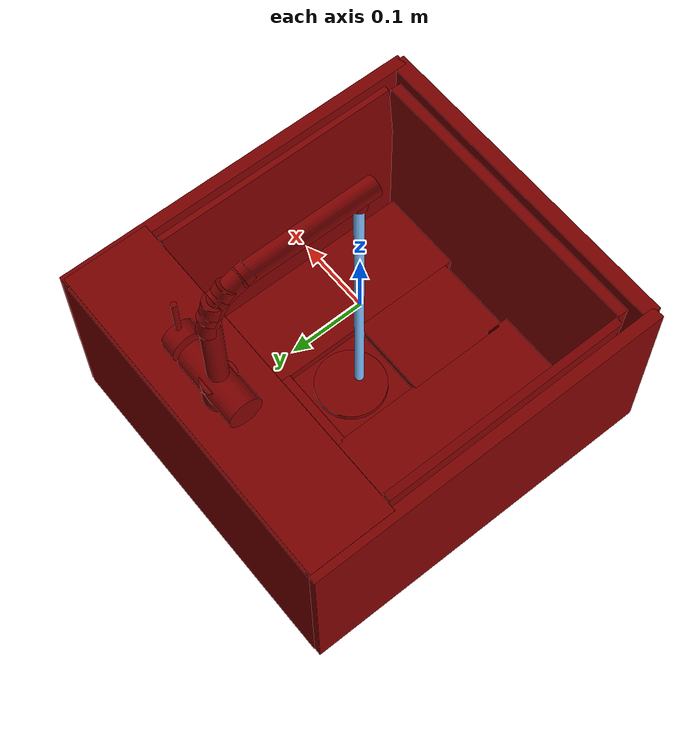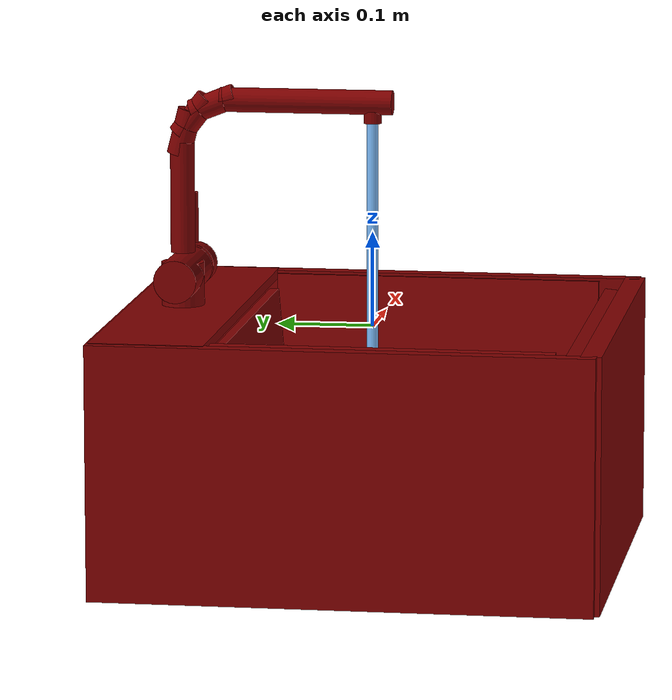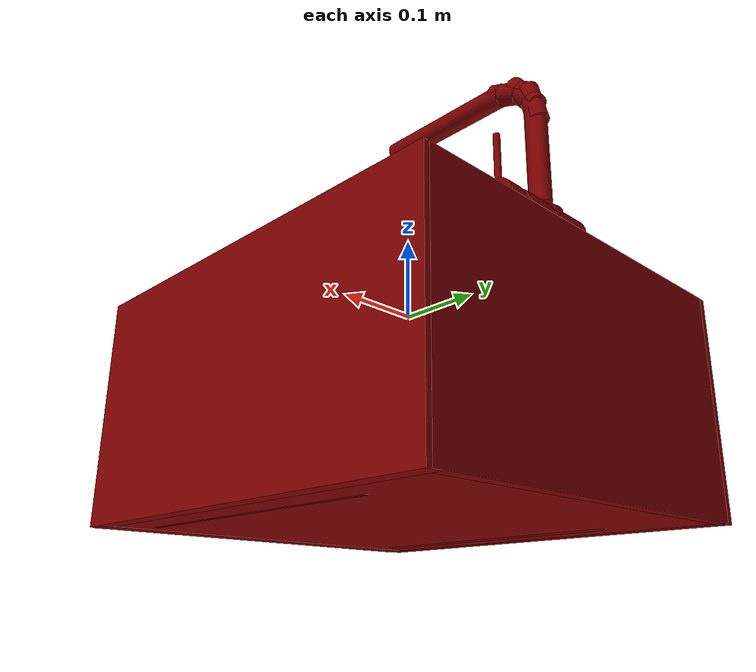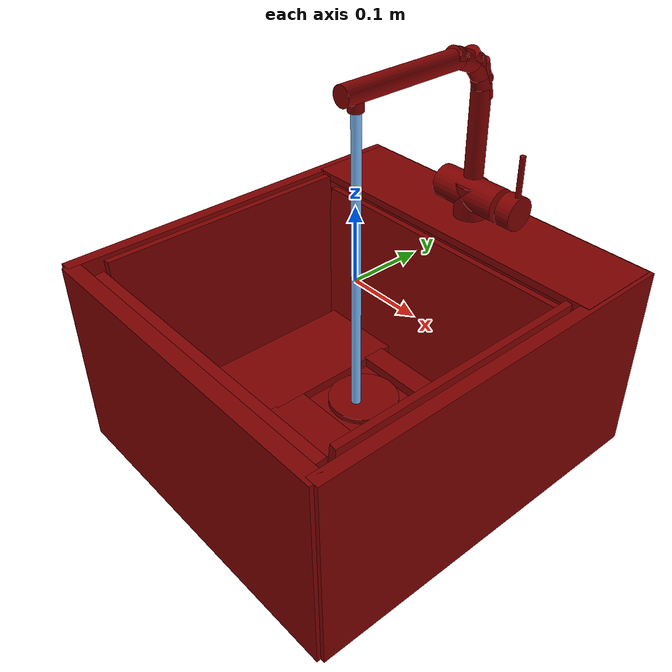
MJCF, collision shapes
<mujoco model="model">
  <compiler angle="radian"/>
  <asset>
    <mesh file="visuals/handle.obj" name="handle_vis"/>
    <mesh file="visuals/Body001.obj" name="Body001_vis"/>
    <mesh file="visuals/Funnel001.obj" name="Funnel001_vis"/>
    <mesh file="visuals/spout.obj" name="spout_vis"/>
    <texture file="visuals/T_BC001.png" name="Body001_material" type="2d"/>
    <material name="Body001_material" rgba="1 1 1 1.0" texture="Body001_material" shininess="0.5" specular="1"/>
    <texture file="visuals/T_BC001.png" name="handle_material" type="2d"/>
    <material name="handle_material" rgba="1 1 1 1.0" texture="handle_material" shininess="0.5" specular="1"/>
    <texture file="visuals/T_BC001.png" name="Funnel001_material" type="2d"/>
    <material name="Funnel001_material" rgba="1 1 1 1.0" texture="Funnel001_material" shininess="0.5" specular="1"/>
    <texture file="visuals/T_BC001.png" name="spout_material" type="2d"/>
    <material name="spout_material" rgba="1 1 1 1.0" texture="spout_material" shininess="0.5" specular="1"/>
  </asset>
  <default>
    <default class="visual">
      <geom conaffinity="0" contype="0" group="1" type="mesh"/>
    </default>
    <default class="collision">
      <geom group="0" rgba="0.5 0 0 0.5"/>
    </default>
    <default class="spawn">
      <geom group="0" rgba="1 1 1 0.5" contype="0" conaffinity="0"/>
      <site group="0" rgba="1 1 1 0.5"/>
    </default>
    <default class="region">
      <geom group="1" conaffinity="0" contype="0" rgba="0 1 0 0"/>
    </default>
  </default>
  <worldbody>
    <body>
      <body name="object">
        <geom mesh="Body001_vis" type="mesh" solimp="0.998 0.998 0.001" solref="0.001 1" density="100" friction="0.95 0.3 0.1" class="visual" material="Body001_material"/>
        <geom class="collision" type="box" pos="-0.23506054282188416 -2.682209014892578e-07 -0.11578034609556198" size="0.008296264335513115 0.25962021946907043 0.1329718977212906" quat="1.0 0.0 0.0 0.0"/>
        <geom class="collision" type="box" pos="0.23565641045570374 -2.682209014892578e-07 -0.11578034609556198" size="0.008736610412597656 0.25962021946907043 0.1329718977212906" quat="1.0 0.0 0.0 0.0"/>
        <geom class="collision" type="box" pos="0.0030584409832954407 -0.2540026605129242 -0.11578034609556198" size="0.23583553731441498 0.010839495807886124 0.1329718828201294" quat="1.0 0.0 0.0 0.0"/>
        <geom class="collision" type="box" pos="0.0030584409832954407 0.2537139356136322 -0.11578034609556198" size="0.23583604395389557 0.006797622423619032 0.1324511170387268" quat="1.0 0.0 0.0 0.0"/>
        <geom class="collision" type="box" pos="0.0030584409832954407 0.1276591718196869 -0.11224254220724106" size="0.005302014295011759 0.20624402165412903 0.11287185549736023" quat="-0.036606933921575546 -0.7061585783958435 -0.7061585783958435 0.03660687059164047"/>
        <geom class="collision" type="box" pos="0.0030584412161260843 -0.21895095705986023 -0.11246468871831894" size="0.0073319533839821815 0.21064023673534393 0.12072356045246124" quat="0.0349348820745945 -0.7062432765960693 -0.7062432765960693 -0.03493494167923927"/>
        <geom class="collision" type="box" pos="-0.19945518672466278 -0.040441274642944336 -0.11609373986721039" size="0.005518236663192511 0.1761256605386734 0.13290388882160187" quat="-4.3643286318229e-08 -0.9984419941902161 2.439091373318547e-09 -0.055799901485443115"/>
        <geom class="collision" type="box" pos="0.19890040159225464 -0.040441274642944336 -0.11591848731040955" size="0.004599577747285366 0.1761256605386734 0.13290388882160187" quat="0.9984419941902161 0.0 0.05579989776015282 0.0"/>
        <geom class="collision" type="box" pos="0.0030584409832954407 -0.000232011079788208 -0.2409551739692688" size="0.23583975434303284 0.2589705288410187 0.006797613110393286" quat="1.0 0.0 0.0 0.0"/>
        <geom class="collision" type="box" pos="-0.11705823242664337 -0.04320057854056358 -0.1983031928539276" size="0.06129753217101097 0.1586364209651947 0.006797529757022858" quat="1.0 0.0 0.0 0.0"/>
        <geom class="collision" type="box" pos="0.11731576919555664 -0.04320057854056358 -0.1983031928539276" size="0.06129753217101097 0.15863670408725739 0.00679754139855504" quat="1.0 0.0 0.0 0.0"/>
        <geom class="collision" type="box" pos="-0.0008477899827994406 -0.11839557439088821 -0.1983031928539276" size="0.05848265811800957 0.07372784614562988 0.006797583773732185" quat="1.0 0.0 0.0 0.0"/>
        <geom class="collision" type="box" pos="-0.0008477899827994406 0.08693782985210419 -0.1983031928539276" size="0.05848265811800957 0.016707107424736023 0.006797578651458025" quat="1.0 0.0 0.0 0.0"/>
        <geom class="collision" type="box" pos="0.0030584409832954407 0.19810841977596283 0.012743569910526276" size="0.23583976924419403 0.05932531878352165 0.005161468870937824" quat="1.0 0.0 0.0 0.0"/>
        <geom class="collision" type="cylinder" pos="0.0008517603273503482 0.20203258097171783 0.031043171882629395" size="0.02263602614402771 0.032472364604473114" quat="1.0 -8.146033536604591e-08 0.0 0.0"/>
        <geom class="collision" type="cylinder" pos="0.0007219046819955111 0.20203258097171783 0.04953136667609215" size="0.02263602614402771 0.04930834472179413" quat="0.7071068286895752 -5.760115939779098e-08 0.7071067690849304 5.760115229236362e-08"/>
        <body name="handle">
          <joint axis="1.0 0.0 0.0" pos="0.06612101197242737 0.2020242065191269 0.049925073981285095" limited="true" name="handle_joint_hinge_0" type="hinge" range="-0.7853981633974483 0.7853981633974483" damping="1" frictionloss="1" armature=".01" stiffness="0.05"/>
          <joint axis="0.0 1.0 0.0" pos="0.06612101197242737 0.2020242065191269 0.049925073981285095" limited="true" name="handle_joint_hinge_1" type="hinge" range="0.0 0.17453292519943295" damping="1" frictionloss="1" armature=".01" stiffness="0.05"/>
          <geom mesh="handle_vis" type="mesh" solimp="0.998 0.998 0.001" solref="0.001 1" density="100" friction="0.95 0.3 0.1" class="visual" material="handle_material"/>
          <geom class="collision" type="cylinder" pos="0.0695202499628067 0.20203258097171783 0.04953136667609215" size="0.02263602614402771 0.011312399059534073" quat="0.7071068286895752 -5.760115939779098e-08 0.7071067690849304 5.760115229236362e-08"/>
          <geom class="collision" type="cylinder" pos="0.07472213357686996 0.20254206657409668 0.0986068919301033" size="0.0038201643619686365 0.027743283659219742" quat="1.0 -8.146033536604591e-08 0.0 0.0"/>
        </body>
        <body name="Funnel001">
          <joint axis="0.0 0.0 1.0" pos="1.4901161193847656e-08 0.01558181643486023 -0.20757544040679932" limited="true" name="Funnel001_joint" range="0.0 0.1" type="slide" damping="1" frictionloss="1" armature=".01" stiffness="1" springref="-0.5"/>
          <geom mesh="Funnel001_vis" type="mesh" solimp="0.998 0.998 0.001" solref="0.001 1" density="100" friction="0.95 0.3 0.1" class="visual" material="Funnel001_material"/>
          <geom class="collision" type="cylinder" pos="0.0 0.014945222064852715 -0.19758081436157227" size="0.04820938780903816 0.0037815819960087538" quat="1.0 0.0 0.0 0.0"/>
        </body>
        <body name="spout">
          <joint axis="0.0 0.0 1.0" pos="0.000901303777936846 0.20278413593769073 0.15556210279464722" limited="true" name="spout_joint" range="-0.7853981633974483 0.7853981633974483" type="hinge" damping="1" frictionloss="1" armature=".01" stiffness="0.05"/>
          <site type="cylinder" rgba="0.5 0.75 1 1" size="0.006213285028934479 0.22314435243606567" pos="0.001067635603249073 0.00037171365693211555 -0.0006376374512910843" name="water"/>
          <geom mesh="spout_vis" type="mesh" solimp="0.998 0.998 0.001" solref="0.001 1" density="100" friction="0.95 0.3 0.1" class="visual" material="spout_material"/>
          <geom class="collision" type="cylinder" pos="0.0011019762605428696 0.2018282413482666 0.1327592134475708" size="0.012858516536653042 0.05865353345870972" quat="1.0 -8.146033536604591e-08 0.0 0.0"/>
          <geom class="collision" type="cylinder" pos="0.0009104841738007963 -0.00013754557585343719 0.22098270058631897" size="0.009285930544137955 0.0064205266535282135" quat="1.0 -8.146033536604591e-08 0.0 0.0"/>
          <geom class="collision" type="cylinder" pos="0.0011019762605428696 0.19932816922664642 0.20134544372558594" size="0.012858516536653042 0.024497201666235924" quat="0.9920640587806702 0.12573327124118805 0.0 0.0"/>
          <geom class="collision" type="cylinder" pos="0.0011019762605428696 0.18931762874126434 0.21816012263298035" size="0.012858516536653042 0.024497203528881073" quat="0.9472011923789978 0.32063978910446167 0.0 0.0"/>
          <geom class="collision" type="cylinder" pos="0.0011019762605428696 0.1683201789855957 0.23184886574745178" size="0.012858516536653042 0.024497201666235924" quat="0.826365053653717 0.5631347894668579 0.0 0.0"/>
          <geom class="collision" type="cylinder" pos="0.0011019762605428696 0.07001488655805588 0.23639380931854248" size="0.012858516536653042 0.09095170348882675" quat="0.7071067094802856 0.70710688829422 0.0 0.0"/>
        </body>
        <geom class="region" name="reg_main" type="box" pos="-3.725290298461914e-09 0.0 -0.11480680853128433" size="0.2492935210466385 0.2648911476135254 0.1329718977212906"/>
        <geom class="region" name="reg_basin" type="box" pos="-0.010699078440666199 -0.05708416923880577 -0.08560947701334953" size="0.19185037910938263 0.15417638793587685 0.08380727842450142"/>
      </body>
    </body>
  </worldbody>
  <actuator>
    <motor name="handle_joint_hinge_0_actuator" joint="handle_joint_hinge_0" gear="10"/>
    <motor name="handle_joint_hinge_1_actuator" joint="handle_joint_hinge_1" gear="10"/>
    <motor name="Funnel001_joint_actuator" joint="Funnel001_joint" gear="10"/>
    <motor name="spout_joint_actuator" joint="spout_joint" gear="10"/>
  </actuator>
</mujoco>
